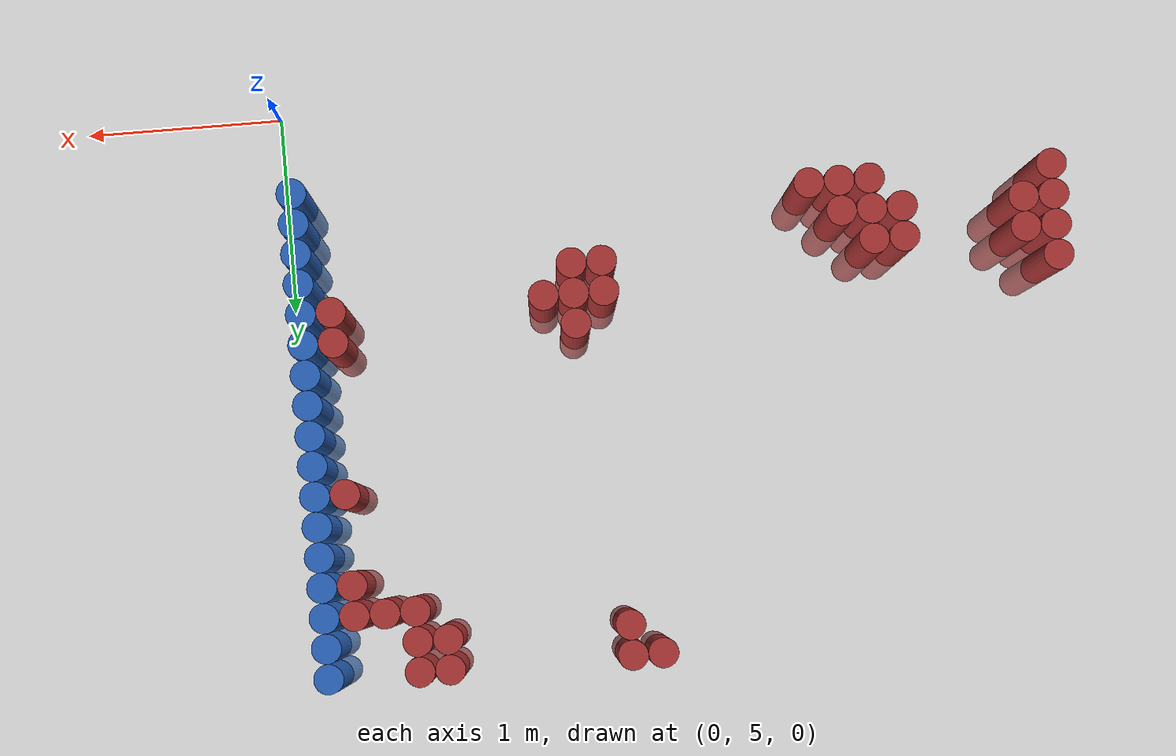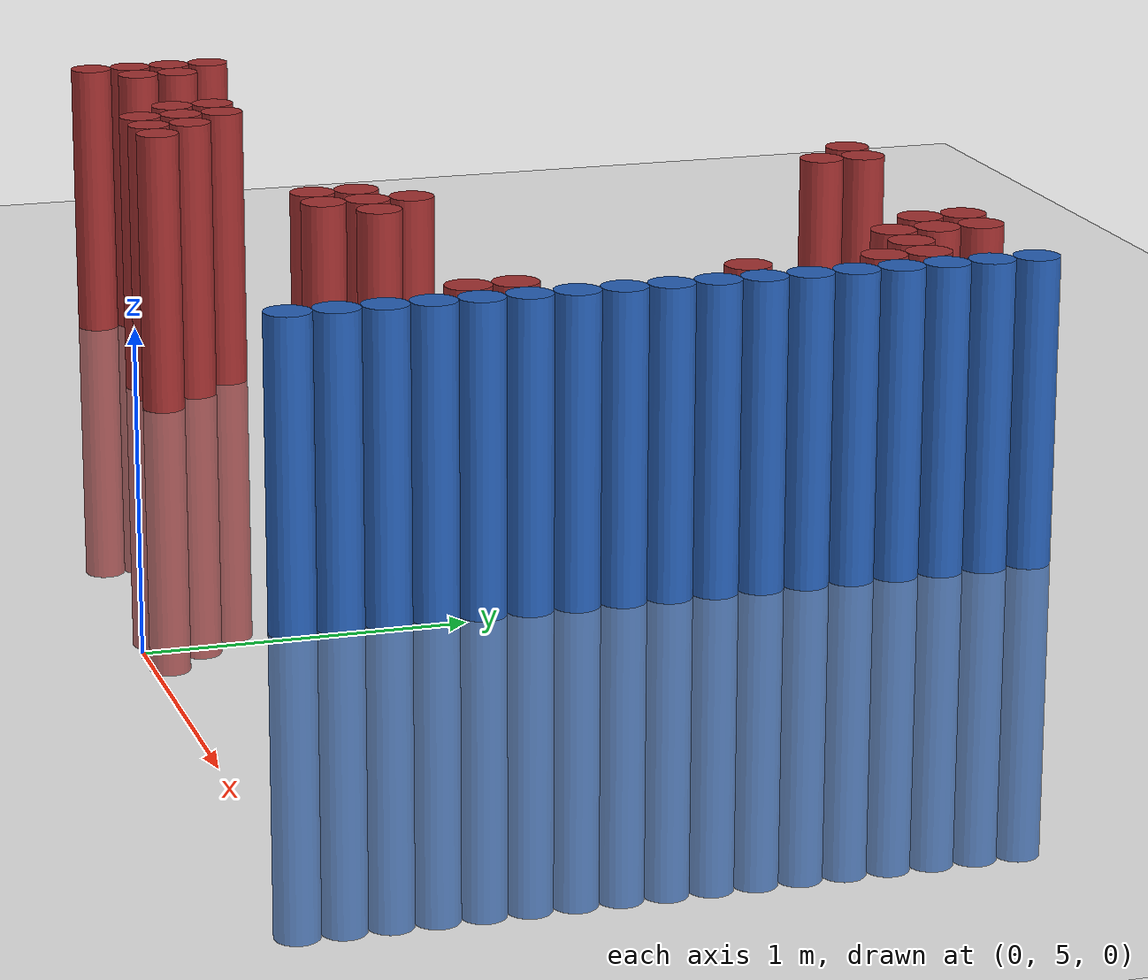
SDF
<sdf version="1.6">
 <world name="default">
  <model name="ground_plane">
   <static>1</static>
   <link name="link">
    <collision name="collision">
     <geometry><plane><normal>0 0 1</normal><size>100 100</size></plane></geometry>
     <surface><friction><ode><mu>100</mu><mu2>50</mu2></ode></friction></surface>
    </collision>
    <visual name="visual">
     <cast_shadows>0</cast_shadows>
     <geometry><plane><normal>0 0 1</normal><size>100 100</size></plane></geometry>
     <material>
      <script><uri>file://media/materials/scripts/gazebo.material</uri><name>Gazebo/Grey</name></script>
     </material>
    </visual>
   </link>
  </model>
  <model name="unit_cylinder_151">
   <static>1</static>
   <pose>-3.825000 5.625000 0.000000 0.000000 0.000000 0.000000</pose>
   <link name="link">
    <inertial>
     <mass>1</mass>
     <inertia><ixx>0.145833</ixx><ixy>0</ixy><ixz>0</ixz><iyy>0.145833</iyy><iyz>0</iyz><izz>0.125</izz></inertia>
    </inertial>
    <collision name="collision">
     <geometry><cylinder><radius>0.075000</radius><length>2</length></cylinder></geometry>
    </collision>
    <visual name="visual">
     <geometry><cylinder><radius>0.075000</radius><length>2</length></cylinder></geometry>
     <material>
      <ambient>0.648000 0.192000 0.192000 1</ambient>
      <diffuse>0.648000 0.192000 0.192000 1</diffuse>
     </material>
     <material>
      <script><name>Gazebo/Grey</name><uri>file://media/materials/scripts/gazebo.material</uri></script>
     </material>
    </visual>
   </link>
  </model>
  <model name="unit_cylinder_152">
   <static>1</static>
   <pose>-3.825000 5.775000 0.000000 0.000000 0.000000 0.000000</pose>
   <link name="link">
    <inertial>
     <mass>1</mass>
     <inertia><ixx>0.145833</ixx><ixy>0</ixy><ixz>0</ixz><iyy>0.145833</iyy><iyz>0</iyz><izz>0.125</izz></inertia>
    </inertial>
    <collision name="collision">
     <geometry><cylinder><radius>0.075000</radius><length>2</length></cylinder></geometry>
    </collision>
    <visual name="visual">
     <geometry><cylinder><radius>0.075000</radius><length>2</length></cylinder></geometry>
     <material>
      <ambient>0.648000 0.192000 0.192000 1</ambient>
      <diffuse>0.648000 0.192000 0.192000 1</diffuse>
     </material>
     <material>
      <script><name>Gazebo/Grey</name><uri>file://media/materials/scripts/gazebo.material</uri></script>
     </material>
    </visual>
   </link>
  </model>
  <model name="unit_cylinder_153">
   <static>1</static>
   <pose>-3.825000 5.925000 0.000000 0.000000 0.000000 0.000000</pose>
   <link name="link">
    <inertial>
     <mass>1</mass>
     <inertia><ixx>0.145833</ixx><ixy>0</ixy><ixz>0</ixz><iyy>0.145833</iyy><iyz>0</iyz><izz>0.125</izz></inertia>
    </inertial>
    <collision name="collision">
     <geometry><cylinder><radius>0.075000</radius><length>2</length></cylinder></geometry>
    </collision>
    <visual name="visual">
     <geometry><cylinder><radius>0.075000</radius><length>2</length></cylinder></geometry>
     <material>
      <ambient>0.648000 0.192000 0.192000 1</ambient>
      <diffuse>0.648000 0.192000 0.192000 1</diffuse>
     </material>
     <material>
      <script><name>Gazebo/Grey</name><uri>file://media/materials/scripts/gazebo.material</uri></script>
     </material>
    </visual>
   </link>
  </model>
  <model name="unit_cylinder_154">
   <static>1</static>
   <pose>-3.825000 6.075000 0.000000 0.000000 0.000000 0.000000</pose>
   <link name="link">
    <inertial>
     <mass>1</mass>
     <inertia><ixx>0.145833</ixx><ixy>0</ixy><ixz>0</ixz><iyy>0.145833</iyy><iyz>0</iyz><izz>0.125</izz></inertia>
    </inertial>
    <collision name="collision">
     <geometry><cylinder><radius>0.075000</radius><length>2</length></cylinder></geometry>
    </collision>
    <visual name="visual">
     <geometry><cylinder><radius>0.075000</radius><length>2</length></cylinder></geometry>
     <material>
      <ambient>0.648000 0.192000 0.192000 1</ambient>
      <diffuse>0.648000 0.192000 0.192000 1</diffuse>
     </material>
     <material>
      <script><name>Gazebo/Grey</name><uri>file://media/materials/scripts/gazebo.material</uri></script>
     </material>
    </visual>
   </link>
  </model>
  <model name="unit_cylinder_159">
   <static>1</static>
   <pose>-3.675000 5.775000 0.000000 0.000000 0.000000 0.000000</pose>
   <link name="link">
    <inertial>
     <mass>1</mass>
     <inertia><ixx>0.145833</ixx><ixy>0</ixy><ixz>0</ixz><iyy>0.145833</iyy><iyz>0</iyz><izz>0.125</izz></inertia>
    </inertial>
    <collision name="collision">
     <geometry><cylinder><radius>0.075000</radius><length>2</length></cylinder></geometry>
    </collision>
    <visual name="visual">
     <geometry><cylinder><radius>0.075000</radius><length>2</length></cylinder></geometry>
     <material>
      <ambient>0.648000 0.192000 0.192000 1</ambient>
      <diffuse>0.648000 0.192000 0.192000 1</diffuse>
     </material>
     <material>
      <script><name>Gazebo/Grey</name><uri>file://media/materials/scripts/gazebo.material</uri></script>
     </material>
    </visual>
   </link>
  </model>
  <model name="unit_cylinder_160">
   <static>1</static>
   <pose>-3.675000 5.925000 0.000000 0.000000 0.000000 0.000000</pose>
   <link name="link">
    <inertial>
     <mass>1</mass>
     <inertia><ixx>0.145833</ixx><ixy>0</ixy><ixz>0</ixz><iyy>0.145833</iyy><iyz>0</iyz><izz>0.125</izz></inertia>
    </inertial>
    <collision name="collision">
     <geometry><cylinder><radius>0.075000</radius><length>2</length></cylinder></geometry>
    </collision>
    <visual name="visual">
     <geometry><cylinder><radius>0.075000</radius><length>2</length></cylinder></geometry>
     <material>
      <ambient>0.648000 0.192000 0.192000 1</ambient>
      <diffuse>0.648000 0.192000 0.192000 1</diffuse>
     </material>
     <material>
      <script><name>Gazebo/Grey</name><uri>file://media/materials/scripts/gazebo.material</uri></script>
     </material>
    </visual>
   </link>
  </model>
  <model name="unit_cylinder_166">
   <static>1</static>
   <pose>-3.075000 5.775000 0.000000 0.000000 0.000000 0.000000</pose>
   <link name="link">
    <inertial>
     <mass>1</mass>
     <inertia><ixx>0.145833</ixx><ixy>0</ixy><ixz>0</ixz><iyy>0.145833</iyy><iyz>0</iyz><izz>0.125</izz></inertia>
    </inertial>
    <collision name="collision">
     <geometry><cylinder><radius>0.075000</radius><length>2</length></cylinder></geometry>
    </collision>
    <visual name="visual">
     <geometry><cylinder><radius>0.075000</radius><length>2</length></cylinder></geometry>
     <material>
      <ambient>0.648000 0.192000 0.192000 1</ambient>
      <diffuse>0.648000 0.192000 0.192000 1</diffuse>
     </material>
     <material>
      <script><name>Gazebo/Grey</name><uri>file://media/materials/scripts/gazebo.material</uri></script>
     </material>
    </visual>
   </link>
  </model>
  <model name="unit_cylinder_167">
   <static>1</static>
   <pose>-3.075000 5.925000 0.000000 0.000000 0.000000 0.000000</pose>
   <link name="link">
    <inertial>
     <mass>1</mass>
     <inertia><ixx>0.145833</ixx><ixy>0</ixy><ixz>0</ixz><iyy>0.145833</iyy><iyz>0</iyz><izz>0.125</izz></inertia>
    </inertial>
    <collision name="collision">
     <geometry><cylinder><radius>0.075000</radius><length>2</length></cylinder></geometry>
    </collision>
    <visual name="visual">
     <geometry><cylinder><radius>0.075000</radius><length>2</length></cylinder></geometry>
     <material>
      <ambient>0.648000 0.192000 0.192000 1</ambient>
      <diffuse>0.648000 0.192000 0.192000 1</diffuse>
     </material>
     <material>
      <script><name>Gazebo/Grey</name><uri>file://media/materials/scripts/gazebo.material</uri></script>
     </material>
    </visual>
   </link>
  </model>
  <model name="unit_cylinder_169">
   <static>1</static>
   <pose>-2.925000 5.625000 0.000000 0.000000 0.000000 0.000000</pose>
   <link name="link">
    <inertial>
     <mass>1</mass>
     <inertia><ixx>0.145833</ixx><ixy>0</ixy><ixz>0</ixz><iyy>0.145833</iyy><iyz>0</iyz><izz>0.125</izz></inertia>
    </inertial>
    <collision name="collision">
     <geometry><cylinder><radius>0.075000</radius><length>2</length></cylinder></geometry>
    </collision>
    <visual name="visual">
     <geometry><cylinder><radius>0.075000</radius><length>2</length></cylinder></geometry>
     <material>
      <ambient>0.648000 0.192000 0.192000 1</ambient>
      <diffuse>0.648000 0.192000 0.192000 1</diffuse>
     </material>
     <material>
      <script><name>Gazebo/Grey</name><uri>file://media/materials/scripts/gazebo.material</uri></script>
     </material>
    </visual>
   </link>
  </model>
  <model name="unit_cylinder_170">
   <static>1</static>
   <pose>-2.925000 5.775000 0.000000 0.000000 0.000000 0.000000</pose>
   <link name="link">
    <inertial>
     <mass>1</mass>
     <inertia><ixx>0.145833</ixx><ixy>0</ixy><ixz>0</ixz><iyy>0.145833</iyy><iyz>0</iyz><izz>0.125</izz></inertia>
    </inertial>
    <collision name="collision">
     <geometry><cylinder><radius>0.075000</radius><length>2</length></cylinder></geometry>
    </collision>
    <visual name="visual">
     <geometry><cylinder><radius>0.075000</radius><length>2</length></cylinder></geometry>
     <material>
      <ambient>0.648000 0.192000 0.192000 1</ambient>
      <diffuse>0.648000 0.192000 0.192000 1</diffuse>
     </material>
     <material>
      <script><name>Gazebo/Grey</name><uri>file://media/materials/scripts/gazebo.material</uri></script>
     </material>
    </visual>
   </link>
  </model>
  <model name="unit_cylinder_171">
   <static>1</static>
   <pose>-2.925000 5.925000 0.000000 0.000000 0.000000 0.000000</pose>
   <link name="link">
    <inertial>
     <mass>1</mass>
     <inertia><ixx>0.145833</ixx><ixy>0</ixy><ixz>0</ixz><iyy>0.145833</iyy><iyz>0</iyz><izz>0.125</izz></inertia>
    </inertial>
    <collision name="collision">
     <geometry><cylinder><radius>0.075000</radius><length>2</length></cylinder></geometry>
    </collision>
    <visual name="visual">
     <geometry><cylinder><radius>0.075000</radius><length>2</length></cylinder></geometry>
     <material>
      <ambient>0.648000 0.192000 0.192000 1</ambient>
      <diffuse>0.648000 0.192000 0.192000 1</diffuse>
     </material>
     <material>
      <script><name>Gazebo/Grey</name><uri>file://media/materials/scripts/gazebo.material</uri></script>
     </material>
    </visual>
   </link>
  </model>
  <model name="unit_cylinder_174">
   <static>1</static>
   <pose>-2.775000 5.625000 0.000000 0.000000 0.000000 0.000000</pose>
   <link name="link">
    <inertial>
     <mass>1</mass>
     <inertia><ixx>0.145833</ixx><ixy>0</ixy><ixz>0</ixz><iyy>0.145833</iyy><iyz>0</iyz><izz>0.125</izz></inertia>
    </inertial>
    <collision name="collision">
     <geometry><cylinder><radius>0.075000</radius><length>2</length></cylinder></geometry>
    </collision>
    <visual name="visual">
     <geometry><cylinder><radius>0.075000</radius><length>2</length></cylinder></geometry>
     <material>
      <ambient>0.648000 0.192000 0.192000 1</ambient>
      <diffuse>0.648000 0.192000 0.192000 1</diffuse>
     </material>
     <material>
      <script><name>Gazebo/Grey</name><uri>file://media/materials/scripts/gazebo.material</uri></script>
     </material>
    </visual>
   </link>
  </model>
  <model name="unit_cylinder_175">
   <static>1</static>
   <pose>-2.775000 5.775000 0.000000 0.000000 0.000000 0.000000</pose>
   <link name="link">
    <inertial>
     <mass>1</mass>
     <inertia><ixx>0.145833</ixx><ixy>0</ixy><ixz>0</ixz><iyy>0.145833</iyy><iyz>0</iyz><izz>0.125</izz></inertia>
    </inertial>
    <collision name="collision">
     <geometry><cylinder><radius>0.075000</radius><length>2</length></cylinder></geometry>
    </collision>
    <visual name="visual">
     <geometry><cylinder><radius>0.075000</radius><length>2</length></cylinder></geometry>
     <material>
      <ambient>0.648000 0.192000 0.192000 1</ambient>
      <diffuse>0.648000 0.192000 0.192000 1</diffuse>
     </material>
     <material>
      <script><name>Gazebo/Grey</name><uri>file://media/materials/scripts/gazebo.material</uri></script>
     </material>
    </visual>
   </link>
  </model>
  <model name="unit_cylinder_178">
   <static>1</static>
   <pose>-2.625000 5.625000 0.000000 0.000000 0.000000 0.000000</pose>
   <link name="link">
    <inertial>
     <mass>1</mass>
     <inertia><ixx>0.145833</ixx><ixy>0</ixy><ixz>0</ixz><iyy>0.145833</iyy><iyz>0</iyz><izz>0.125</izz></inertia>
    </inertial>
    <collision name="collision">
     <geometry><cylinder><radius>0.075000</radius><length>2</length></cylinder></geometry>
    </collision>
    <visual name="visual">
     <geometry><cylinder><radius>0.075000</radius><length>2</length></cylinder></geometry>
     <material>
      <ambient>0.648000 0.192000 0.192000 1</ambient>
      <diffuse>0.648000 0.192000 0.192000 1</diffuse>
     </material>
     <material>
      <script><name>Gazebo/Grey</name><uri>file://media/materials/scripts/gazebo.material</uri></script>
     </material>
    </visual>
   </link>
  </model>
  <model name="unit_cylinder_189">
   <static>1</static>
   <pose>-1.725000 7.875000 0.000000 0.000000 0.000000 0.000000</pose>
   <link name="link">
    <inertial>
     <mass>1</mass>
     <inertia><ixx>0.145833</ixx><ixy>0</ixy><ixz>0</ixz><iyy>0.145833</iyy><iyz>0</iyz><izz>0.125</izz></inertia>
    </inertial>
    <collision name="collision">
     <geometry><cylinder><radius>0.075000</radius><length>2</length></cylinder></geometry>
    </collision>
    <visual name="visual">
     <geometry><cylinder><radius>0.075000</radius><length>2</length></cylinder></geometry>
     <material>
      <ambient>0.648000 0.192000 0.192000 1</ambient>
      <diffuse>0.648000 0.192000 0.192000 1</diffuse>
     </material>
     <material>
      <script><name>Gazebo/Grey</name><uri>file://media/materials/scripts/gazebo.material</uri></script>
     </material>
    </visual>
   </link>
  </model>
  <model name="unit_cylinder_192">
   <static>1</static>
   <pose>-1.575000 5.925000 0.000000 0.000000 0.000000 0.000000</pose>
   <link name="link">
    <inertial>
     <mass>1</mass>
     <inertia><ixx>0.145833</ixx><ixy>0</ixy><ixz>0</ixz><iyy>0.145833</iyy><iyz>0</iyz><izz>0.125</izz></inertia>
    </inertial>
    <collision name="collision">
     <geometry><cylinder><radius>0.075000</radius><length>2</length></cylinder></geometry>
    </collision>
    <visual name="visual">
     <geometry><cylinder><radius>0.075000</radius><length>2</length></cylinder></geometry>
     <material>
      <ambient>0.648000 0.192000 0.192000 1</ambient>
      <diffuse>0.648000 0.192000 0.192000 1</diffuse>
     </material>
     <material>
      <script><name>Gazebo/Grey</name><uri>file://media/materials/scripts/gazebo.material</uri></script>
     </material>
    </visual>
   </link>
  </model>
  <model name="unit_cylinder_193">
   <static>1</static>
   <pose>-1.575000 6.075000 0.000000 0.000000 0.000000 0.000000</pose>
   <link name="link">
    <inertial>
     <mass>1</mass>
     <inertia><ixx>0.145833</ixx><ixy>0</ixy><ixz>0</ixz><iyy>0.145833</iyy><iyz>0</iyz><izz>0.125</izz></inertia>
    </inertial>
    <collision name="collision">
     <geometry><cylinder><radius>0.075000</radius><length>2</length></cylinder></geometry>
    </collision>
    <visual name="visual">
     <geometry><cylinder><radius>0.075000</radius><length>2</length></cylinder></geometry>
     <material>
      <ambient>0.648000 0.192000 0.192000 1</ambient>
      <diffuse>0.648000 0.192000 0.192000 1</diffuse>
     </material>
     <material>
      <script><name>Gazebo/Grey</name><uri>file://media/materials/scripts/gazebo.material</uri></script>
     </material>
    </visual>
   </link>
  </model>
  <model name="unit_cylinder_194">
   <static>1</static>
   <pose>-1.575000 7.725000 0.000000 0.000000 0.000000 0.000000</pose>
   <link name="link">
    <inertial>
     <mass>1</mass>
     <inertia><ixx>0.145833</ixx><ixy>0</ixy><ixz>0</ixz><iyy>0.145833</iyy><iyz>0</iyz><izz>0.125</izz></inertia>
    </inertial>
    <collision name="collision">
     <geometry><cylinder><radius>0.075000</radius><length>2</length></cylinder></geometry>
    </collision>
    <visual name="visual">
     <geometry><cylinder><radius>0.075000</radius><length>2</length></cylinder></geometry>
     <material>
      <ambient>0.648000 0.192000 0.192000 1</ambient>
      <diffuse>0.648000 0.192000 0.192000 1</diffuse>
     </material>
     <material>
      <script><name>Gazebo/Grey</name><uri>file://media/materials/scripts/gazebo.material</uri></script>
     </material>
    </visual>
   </link>
  </model>
  <model name="unit_cylinder_195">
   <static>1</static>
   <pose>-1.575000 7.875000 0.000000 0.000000 0.000000 0.000000</pose>
   <link name="link">
    <inertial>
     <mass>1</mass>
     <inertia><ixx>0.145833</ixx><ixy>0</ixy><ixz>0</ixz><iyy>0.145833</iyy><iyz>0</iyz><izz>0.125</izz></inertia>
    </inertial>
    <collision name="collision">
     <geometry><cylinder><radius>0.075000</radius><length>2</length></cylinder></geometry>
    </collision>
    <visual name="visual">
     <geometry><cylinder><radius>0.075000</radius><length>2</length></cylinder></geometry>
     <material>
      <ambient>0.648000 0.192000 0.192000 1</ambient>
      <diffuse>0.648000 0.192000 0.192000 1</diffuse>
     </material>
     <material>
      <script><name>Gazebo/Grey</name><uri>file://media/materials/scripts/gazebo.material</uri></script>
     </material>
    </visual>
   </link>
  </model>
  <model name="unit_cylinder_197">
   <static>1</static>
   <pose>-1.425000 5.925000 0.000000 0.000000 0.000000 0.000000</pose>
   <link name="link">
    <inertial>
     <mass>1</mass>
     <inertia><ixx>0.145833</ixx><ixy>0</ixy><ixz>0</ixz><iyy>0.145833</iyy><iyz>0</iyz><izz>0.125</izz></inertia>
    </inertial>
    <collision name="collision">
     <geometry><cylinder><radius>0.075000</radius><length>2</length></cylinder></geometry>
    </collision>
    <visual name="visual">
     <geometry><cylinder><radius>0.075000</radius><length>2</length></cylinder></geometry>
     <material>
      <ambient>0.648000 0.192000 0.192000 1</ambient>
      <diffuse>0.648000 0.192000 0.192000 1</diffuse>
     </material>
     <material>
      <script><name>Gazebo/Grey</name><uri>file://media/materials/scripts/gazebo.material</uri></script>
     </material>
    </visual>
   </link>
  </model>
  <model name="unit_cylinder_198">
   <static>1</static>
   <pose>-1.425000 6.075000 0.000000 0.000000 0.000000 0.000000</pose>
   <link name="link">
    <inertial>
     <mass>1</mass>
     <inertia><ixx>0.145833</ixx><ixy>0</ixy><ixz>0</ixz><iyy>0.145833</iyy><iyz>0</iyz><izz>0.125</izz></inertia>
    </inertial>
    <collision name="collision">
     <geometry><cylinder><radius>0.075000</radius><length>2</length></cylinder></geometry>
    </collision>
    <visual name="visual">
     <geometry><cylinder><radius>0.075000</radius><length>2</length></cylinder></geometry>
     <material>
      <ambient>0.648000 0.192000 0.192000 1</ambient>
      <diffuse>0.648000 0.192000 0.192000 1</diffuse>
     </material>
     <material>
      <script><name>Gazebo/Grey</name><uri>file://media/materials/scripts/gazebo.material</uri></script>
     </material>
    </visual>
   </link>
  </model>
  <model name="unit_cylinder_199">
   <static>1</static>
   <pose>-1.425000 6.225000 0.000000 0.000000 0.000000 0.000000</pose>
   <link name="link">
    <inertial>
     <mass>1</mass>
     <inertia><ixx>0.145833</ixx><ixy>0</ixy><ixz>0</ixz><iyy>0.145833</iyy><iyz>0</iyz><izz>0.125</izz></inertia>
    </inertial>
    <collision name="collision">
     <geometry><cylinder><radius>0.075000</radius><length>2</length></cylinder></geometry>
    </collision>
    <visual name="visual">
     <geometry><cylinder><radius>0.075000</radius><length>2</length></cylinder></geometry>
     <material>
      <ambient>0.648000 0.192000 0.192000 1</ambient>
      <diffuse>0.648000 0.192000 0.192000 1</diffuse>
     </material>
     <material>
      <script><name>Gazebo/Grey</name><uri>file://media/materials/scripts/gazebo.material</uri></script>
     </material>
    </visual>
   </link>
  </model>
  <model name="unit_cylinder_200">
   <static>1</static>
   <pose>-1.275000 6.075000 0.000000 0.000000 0.000000 0.000000</pose>
   <link name="link">
    <inertial>
     <mass>1</mass>
     <inertia><ixx>0.145833</ixx><ixy>0</ixy><ixz>0</ixz><iyy>0.145833</iyy><iyz>0</iyz><izz>0.125</izz></inertia>
    </inertial>
    <collision name="collision">
     <geometry><cylinder><radius>0.075000</radius><length>2</length></cylinder></geometry>
    </collision>
    <visual name="visual">
     <geometry><cylinder><radius>0.075000</radius><length>2</length></cylinder></geometry>
     <material>
      <ambient>0.648000 0.192000 0.192000 1</ambient>
      <diffuse>0.648000 0.192000 0.192000 1</diffuse>
     </material>
     <material>
      <script><name>Gazebo/Grey</name><uri>file://media/materials/scripts/gazebo.material</uri></script>
     </material>
    </visual>
   </link>
  </model>
  <model name="unit_cylinder_201">
   <static>1</static>
   <pose>-0.675000 7.725000 0.000000 0.000000 0.000000 0.000000</pose>
   <link name="link">
    <inertial>
     <mass>1</mass>
     <inertia><ixx>0.145833</ixx><ixy>0</ixy><ixz>0</ixz><iyy>0.145833</iyy><iyz>0</iyz><izz>0.125</izz></inertia>
    </inertial>
    <collision name="collision">
     <geometry><cylinder><radius>0.075000</radius><length>2</length></cylinder></geometry>
    </collision>
    <visual name="visual">
     <geometry><cylinder><radius>0.075000</radius><length>2</length></cylinder></geometry>
     <material>
      <ambient>0.648000 0.192000 0.192000 1</ambient>
      <diffuse>0.648000 0.192000 0.192000 1</diffuse>
     </material>
     <material>
      <script><name>Gazebo/Grey</name><uri>file://media/materials/scripts/gazebo.material</uri></script>
     </material>
    </visual>
   </link>
  </model>
  <model name="unit_cylinder_202">
   <static>1</static>
   <pose>-0.675000 7.875000 0.000000 0.000000 0.000000 0.000000</pose>
   <link name="link">
    <inertial>
     <mass>1</mass>
     <inertia><ixx>0.145833</ixx><ixy>0</ixy><ixz>0</ixz><iyy>0.145833</iyy><iyz>0</iyz><izz>0.125</izz></inertia>
    </inertial>
    <collision name="collision">
     <geometry><cylinder><radius>0.075000</radius><length>2</length></cylinder></geometry>
    </collision>
    <visual name="visual">
     <geometry><cylinder><radius>0.075000</radius><length>2</length></cylinder></geometry>
     <material>
      <ambient>0.648000 0.192000 0.192000 1</ambient>
      <diffuse>0.648000 0.192000 0.192000 1</diffuse>
     </material>
     <material>
      <script><name>Gazebo/Grey</name><uri>file://media/materials/scripts/gazebo.material</uri></script>
     </material>
    </visual>
   </link>
  </model>
  <model name="unit_cylinder_205">
   <static>1</static>
   <pose>-0.525000 7.575000 0.000000 0.000000 0.000000 0.000000</pose>
   <link name="link">
    <inertial>
     <mass>1</mass>
     <inertia><ixx>0.145833</ixx><ixy>0</ixy><ixz>0</ixz><iyy>0.145833</iyy><iyz>0</iyz><izz>0.125</izz></inertia>
    </inertial>
    <collision name="collision">
     <geometry><cylinder><radius>0.075000</radius><length>2</length></cylinder></geometry>
    </collision>
    <visual name="visual">
     <geometry><cylinder><radius>0.075000</radius><length>2</length></cylinder></geometry>
     <material>
      <ambient>0.648000 0.192000 0.192000 1</ambient>
      <diffuse>0.648000 0.192000 0.192000 1</diffuse>
     </material>
     <material>
      <script><name>Gazebo/Grey</name><uri>file://media/materials/scripts/gazebo.material</uri></script>
     </material>
    </visual>
   </link>
  </model>
  <model name="unit_cylinder_206">
   <static>1</static>
   <pose>-0.525000 7.725000 0.000000 0.000000 0.000000 0.000000</pose>
   <link name="link">
    <inertial>
     <mass>1</mass>
     <inertia><ixx>0.145833</ixx><ixy>0</ixy><ixz>0</ixz><iyy>0.145833</iyy><iyz>0</iyz><izz>0.125</izz></inertia>
    </inertial>
    <collision name="collision">
     <geometry><cylinder><radius>0.075000</radius><length>2</length></cylinder></geometry>
    </collision>
    <visual name="visual">
     <geometry><cylinder><radius>0.075000</radius><length>2</length></cylinder></geometry>
     <material>
      <ambient>0.648000 0.192000 0.192000 1</ambient>
      <diffuse>0.648000 0.192000 0.192000 1</diffuse>
     </material>
     <material>
      <script><name>Gazebo/Grey</name><uri>file://media/materials/scripts/gazebo.material</uri></script>
     </material>
    </visual>
   </link>
  </model>
  <model name="unit_cylinder_207">
   <static>1</static>
   <pose>-0.525000 7.875000 0.000000 0.000000 0.000000 0.000000</pose>
   <link name="link">
    <inertial>
     <mass>1</mass>
     <inertia><ixx>0.145833</ixx><ixy>0</ixy><ixz>0</ixz><iyy>0.145833</iyy><iyz>0</iyz><izz>0.125</izz></inertia>
    </inertial>
    <collision name="collision">
     <geometry><cylinder><radius>0.075000</radius><length>2</length></cylinder></geometry>
    </collision>
    <visual name="visual">
     <geometry><cylinder><radius>0.075000</radius><length>2</length></cylinder></geometry>
     <material>
      <ambient>0.648000 0.192000 0.192000 1</ambient>
      <diffuse>0.648000 0.192000 0.192000 1</diffuse>
     </material>
     <material>
      <script><name>Gazebo/Grey</name><uri>file://media/materials/scripts/gazebo.material</uri></script>
     </material>
    </visual>
   </link>
  </model>
  <model name="unit_cylinder_212">
   <static>1</static>
   <pose>-0.375000 7.575000 0.000000 0.000000 0.000000 0.000000</pose>
   <link name="link">
    <inertial>
     <mass>1</mass>
     <inertia><ixx>0.145833</ixx><ixy>0</ixy><ixz>0</ixz><iyy>0.145833</iyy><iyz>0</iyz><izz>0.125</izz></inertia>
    </inertial>
    <collision name="collision">
     <geometry><cylinder><radius>0.075000</radius><length>2</length></cylinder></geometry>
    </collision>
    <visual name="visual">
     <geometry><cylinder><radius>0.075000</radius><length>2</length></cylinder></geometry>
     <material>
      <ambient>0.648000 0.192000 0.192000 1</ambient>
      <diffuse>0.648000 0.192000 0.192000 1</diffuse>
     </material>
     <material>
      <script><name>Gazebo/Grey</name><uri>file://media/materials/scripts/gazebo.material</uri></script>
     </material>
    </visual>
   </link>
  </model>
  <model name="unit_cylinder_215">
   <static>1</static>
   <pose>-0.225000 6.075000 0.000000 0.000000 0.000000 0.000000</pose>
   <link name="link">
    <inertial>
     <mass>1</mass>
     <inertia><ixx>0.145833</ixx><ixy>0</ixy><ixz>0</ixz><iyy>0.145833</iyy><iyz>0</iyz><izz>0.125</izz></inertia>
    </inertial>
    <collision name="collision">
     <geometry><cylinder><radius>0.075000</radius><length>2</length></cylinder></geometry>
    </collision>
    <visual name="visual">
     <geometry><cylinder><radius>0.075000</radius><length>2</length></cylinder></geometry>
     <material>
      <ambient>0.648000 0.192000 0.192000 1</ambient>
      <diffuse>0.648000 0.192000 0.192000 1</diffuse>
     </material>
     <material>
      <script><name>Gazebo/Grey</name><uri>file://media/materials/scripts/gazebo.material</uri></script>
     </material>
    </visual>
   </link>
  </model>
  <model name="unit_cylinder_216">
   <static>1</static>
   <pose>-0.225000 6.225000 0.000000 0.000000 0.000000 0.000000</pose>
   <link name="link">
    <inertial>
     <mass>1</mass>
     <inertia><ixx>0.145833</ixx><ixy>0</ixy><ixz>0</ixz><iyy>0.145833</iyy><iyz>0</iyz><izz>0.125</izz></inertia>
    </inertial>
    <collision name="collision">
     <geometry><cylinder><radius>0.075000</radius><length>2</length></cylinder></geometry>
    </collision>
    <visual name="visual">
     <geometry><cylinder><radius>0.075000</radius><length>2</length></cylinder></geometry>
     <material>
      <ambient>0.648000 0.192000 0.192000 1</ambient>
      <diffuse>0.648000 0.192000 0.192000 1</diffuse>
     </material>
     <material>
      <script><name>Gazebo/Grey</name><uri>file://media/materials/scripts/gazebo.material</uri></script>
     </material>
    </visual>
   </link>
  </model>
  <model name="unit_cylinder_217">
   <static>1</static>
   <pose>-0.225000 6.975000 0.000000 0.000000 0.000000 0.000000</pose>
   <link name="link">
    <inertial>
     <mass>1</mass>
     <inertia><ixx>0.145833</ixx><ixy>0</ixy><ixz>0</ixz><iyy>0.145833</iyy><iyz>0</iyz><izz>0.125</izz></inertia>
    </inertial>
    <collision name="collision">
     <geometry><cylinder><radius>0.075000</radius><length>2</length></cylinder></geometry>
    </collision>
    <visual name="visual">
     <geometry><cylinder><radius>0.075000</radius><length>2</length></cylinder></geometry>
     <material>
      <ambient>0.648000 0.192000 0.192000 1</ambient>
      <diffuse>0.648000 0.192000 0.192000 1</diffuse>
     </material>
     <material>
      <script><name>Gazebo/Grey</name><uri>file://media/materials/scripts/gazebo.material</uri></script>
     </material>
    </visual>
   </link>
  </model>
  <model name="unit_cylinder_218">
   <static>1</static>
   <pose>-0.225000 7.425000 0.000000 0.000000 0.000000 0.000000</pose>
   <link name="link">
    <inertial>
     <mass>1</mass>
     <inertia><ixx>0.145833</ixx><ixy>0</ixy><ixz>0</ixz><iyy>0.145833</iyy><iyz>0</iyz><izz>0.125</izz></inertia>
    </inertial>
    <collision name="collision">
     <geometry><cylinder><radius>0.075000</radius><length>2</length></cylinder></geometry>
    </collision>
    <visual name="visual">
     <geometry><cylinder><radius>0.075000</radius><length>2</length></cylinder></geometry>
     <material>
      <ambient>0.648000 0.192000 0.192000 1</ambient>
      <diffuse>0.648000 0.192000 0.192000 1</diffuse>
     </material>
     <material>
      <script><name>Gazebo/Grey</name><uri>file://media/materials/scripts/gazebo.material</uri></script>
     </material>
    </visual>
   </link>
  </model>
  <model name="unit_cylinder_219">
   <static>1</static>
   <pose>-0.225000 7.575000 0.000000 0.000000 0.000000 0.000000</pose>
   <link name="link">
    <inertial>
     <mass>1</mass>
     <inertia><ixx>0.145833</ixx><ixy>0</ixy><ixz>0</ixz><iyy>0.145833</iyy><iyz>0</iyz><izz>0.125</izz></inertia>
    </inertial>
    <collision name="collision">
     <geometry><cylinder><radius>0.075000</radius><length>2</length></cylinder></geometry>
    </collision>
    <visual name="visual">
     <geometry><cylinder><radius>0.075000</radius><length>2</length></cylinder></geometry>
     <material>
      <ambient>0.648000 0.192000 0.192000 1</ambient>
      <diffuse>0.648000 0.192000 0.192000 1</diffuse>
     </material>
     <material>
      <script><name>Gazebo/Grey</name><uri>file://media/materials/scripts/gazebo.material</uri></script>
     </material>
    </visual>
   </link>
  </model>
  <model name="unit_cylinder_227">
   <static>1</static>
   <pose>-0.075000 5.475000 0.000000 0.000000 0.000000 0.000000</pose>
   <link name="link">
    <inertial>
     <mass>1</mass>
     <inertia><ixx>0.145833</ixx><ixy>0</ixy><ixz>0</ixz><iyy>0.145833</iyy><iyz>0</iyz><izz>0.125</izz></inertia>
    </inertial>
    <collision name="collision">
     <geometry><cylinder><radius>0.075000</radius><length>2</length></cylinder></geometry>
    </collision>
    <visual name="visual">
     <geometry><cylinder><radius>0.075000</radius><length>2</length></cylinder></geometry>
     <material>
      <ambient>0.152000 0.379000 0.720000 1</ambient>
      <diffuse>0.152000 0.379000 0.720000 1</diffuse>
     </material>
     <material>
      <script><name>Gazebo/Grey</name><uri>file://media/materials/scripts/gazebo.material</uri></script>
     </material>
    </visual>
   </link>
  </model>
  <model name="unit_cylinder_228">
   <static>1</static>
   <pose>-0.075000 5.625000 0.000000 0.000000 0.000000 0.000000</pose>
   <link name="link">
    <inertial>
     <mass>1</mass>
     <inertia><ixx>0.145833</ixx><ixy>0</ixy><ixz>0</ixz><iyy>0.145833</iyy><iyz>0</iyz><izz>0.125</izz></inertia>
    </inertial>
    <collision name="collision">
     <geometry><cylinder><radius>0.075000</radius><length>2</length></cylinder></geometry>
    </collision>
    <visual name="visual">
     <geometry><cylinder><radius>0.075000</radius><length>2</length></cylinder></geometry>
     <material>
      <ambient>0.152000 0.379000 0.720000 1</ambient>
      <diffuse>0.152000 0.379000 0.720000 1</diffuse>
     </material>
     <material>
      <script><name>Gazebo/Grey</name><uri>file://media/materials/scripts/gazebo.material</uri></script>
     </material>
    </visual>
   </link>
  </model>
  <model name="unit_cylinder_229">
   <static>1</static>
   <pose>-0.075000 5.775000 0.000000 0.000000 0.000000 0.000000</pose>
   <link name="link">
    <inertial>
     <mass>1</mass>
     <inertia><ixx>0.145833</ixx><ixy>0</ixy><ixz>0</ixz><iyy>0.145833</iyy><iyz>0</iyz><izz>0.125</izz></inertia>
    </inertial>
    <collision name="collision">
     <geometry><cylinder><radius>0.075000</radius><length>2</length></cylinder></geometry>
    </collision>
    <visual name="visual">
     <geometry><cylinder><radius>0.075000</radius><length>2</length></cylinder></geometry>
     <material>
      <ambient>0.152000 0.379000 0.720000 1</ambient>
      <diffuse>0.152000 0.379000 0.720000 1</diffuse>
     </material>
     <material>
      <script><name>Gazebo/Grey</name><uri>file://media/materials/scripts/gazebo.material</uri></script>
     </material>
    </visual>
   </link>
  </model>
  <model name="unit_cylinder_230">
   <static>1</static>
   <pose>-0.075000 5.925000 0.000000 0.000000 0.000000 0.000000</pose>
   <link name="link">
    <inertial>
     <mass>1</mass>
     <inertia><ixx>0.145833</ixx><ixy>0</ixy><ixz>0</ixz><iyy>0.145833</iyy><iyz>0</iyz><izz>0.125</izz></inertia>
    </inertial>
    <collision name="collision">
     <geometry><cylinder><radius>0.075000</radius><length>2</length></cylinder></geometry>
    </collision>
    <visual name="visual">
     <geometry><cylinder><radius>0.075000</radius><length>2</length></cylinder></geometry>
     <material>
      <ambient>0.152000 0.379000 0.720000 1</ambient>
      <diffuse>0.152000 0.379000 0.720000 1</diffuse>
     </material>
     <material>
      <script><name>Gazebo/Grey</name><uri>file://media/materials/scripts/gazebo.material</uri></script>
     </material>
    </visual>
   </link>
  </model>
  <model name="unit_cylinder_231">
   <static>1</static>
   <pose>-0.075000 6.075000 0.000000 0.000000 0.000000 0.000000</pose>
   <link name="link">
    <inertial>
     <mass>1</mass>
     <inertia><ixx>0.145833</ixx><ixy>0</ixy><ixz>0</ixz><iyy>0.145833</iyy><iyz>0</iyz><izz>0.125</izz></inertia>
    </inertial>
    <collision name="collision">
     <geometry><cylinder><radius>0.075000</radius><length>2</length></cylinder></geometry>
    </collision>
    <visual name="visual">
     <geometry><cylinder><radius>0.075000</radius><length>2</length></cylinder></geometry>
     <material>
      <ambient>0.152000 0.379000 0.720000 1</ambient>
      <diffuse>0.152000 0.379000 0.720000 1</diffuse>
     </material>
     <material>
      <script><name>Gazebo/Grey</name><uri>file://media/materials/scripts/gazebo.material</uri></script>
     </material>
    </visual>
   </link>
  </model>
  <model name="unit_cylinder_232">
   <static>1</static>
   <pose>-0.075000 6.225000 0.000000 0.000000 0.000000 0.000000</pose>
   <link name="link">
    <inertial>
     <mass>1</mass>
     <inertia><ixx>0.145833</ixx><ixy>0</ixy><ixz>0</ixz><iyy>0.145833</iyy><iyz>0</iyz><izz>0.125</izz></inertia>
    </inertial>
    <collision name="collision">
     <geometry><cylinder><radius>0.075000</radius><length>2</length></cylinder></geometry>
    </collision>
    <visual name="visual">
     <geometry><cylinder><radius>0.075000</radius><length>2</length></cylinder></geometry>
     <material>
      <ambient>0.152000 0.379000 0.720000 1</ambient>
      <diffuse>0.152000 0.379000 0.720000 1</diffuse>
     </material>
     <material>
      <script><name>Gazebo/Grey</name><uri>file://media/materials/scripts/gazebo.material</uri></script>
     </material>
    </visual>
   </link>
  </model>
  <model name="unit_cylinder_233">
   <static>1</static>
   <pose>-0.075000 6.375000 0.000000 0.000000 0.000000 0.000000</pose>
   <link name="link">
    <inertial>
     <mass>1</mass>
     <inertia><ixx>0.145833</ixx><ixy>0</ixy><ixz>0</ixz><iyy>0.145833</iyy><iyz>0</iyz><izz>0.125</izz></inertia>
    </inertial>
    <collision name="collision">
     <geometry><cylinder><radius>0.075000</radius><length>2</length></cylinder></geometry>
    </collision>
    <visual name="visual">
     <geometry><cylinder><radius>0.075000</radius><length>2</length></cylinder></geometry>
     <material>
      <ambient>0.152000 0.379000 0.720000 1</ambient>
      <diffuse>0.152000 0.379000 0.720000 1</diffuse>
     </material>
     <material>
      <script><name>Gazebo/Grey</name><uri>file://media/materials/scripts/gazebo.material</uri></script>
     </material>
    </visual>
   </link>
  </model>
  <model name="unit_cylinder_234">
   <static>1</static>
   <pose>-0.075000 6.525000 0.000000 0.000000 0.000000 0.000000</pose>
   <link name="link">
    <inertial>
     <mass>1</mass>
     <inertia><ixx>0.145833</ixx><ixy>0</ixy><ixz>0</ixz><iyy>0.145833</iyy><iyz>0</iyz><izz>0.125</izz></inertia>
    </inertial>
    <collision name="collision">
     <geometry><cylinder><radius>0.075000</radius><length>2</length></cylinder></geometry>
    </collision>
    <visual name="visual">
     <geometry><cylinder><radius>0.075000</radius><length>2</length></cylinder></geometry>
     <material>
      <ambient>0.152000 0.379000 0.720000 1</ambient>
      <diffuse>0.152000 0.379000 0.720000 1</diffuse>
     </material>
     <material>
      <script><name>Gazebo/Grey</name><uri>file://media/materials/scripts/gazebo.material</uri></script>
     </material>
    </visual>
   </link>
  </model>
  <model name="unit_cylinder_235">
   <static>1</static>
   <pose>-0.075000 6.675000 0.000000 0.000000 0.000000 0.000000</pose>
   <link name="link">
    <inertial>
     <mass>1</mass>
     <inertia><ixx>0.145833</ixx><ixy>0</ixy><ixz>0</ixz><iyy>0.145833</iyy><iyz>0</iyz><izz>0.125</izz></inertia>
    </inertial>
    <collision name="collision">
     <geometry><cylinder><radius>0.075000</radius><length>2</length></cylinder></geometry>
    </collision>
    <visual name="visual">
     <geometry><cylinder><radius>0.075000</radius><length>2</length></cylinder></geometry>
     <material>
      <ambient>0.152000 0.379000 0.720000 1</ambient>
      <diffuse>0.152000 0.379000 0.720000 1</diffuse>
     </material>
     <material>
      <script><name>Gazebo/Grey</name><uri>file://media/materials/scripts/gazebo.material</uri></script>
     </material>
    </visual>
   </link>
  </model>
  <model name="unit_cylinder_236">
   <static>1</static>
   <pose>-0.075000 6.825000 0.000000 0.000000 0.000000 0.000000</pose>
   <link name="link">
    <inertial>
     <mass>1</mass>
     <inertia><ixx>0.145833</ixx><ixy>0</ixy><ixz>0</ixz><iyy>0.145833</iyy><iyz>0</iyz><izz>0.125</izz></inertia>
    </inertial>
    <collision name="collision">
     <geometry><cylinder><radius>0.075000</radius><length>2</length></cylinder></geometry>
    </collision>
    <visual name="visual">
     <geometry><cylinder><radius>0.075000</radius><length>2</length></cylinder></geometry>
     <material>
      <ambient>0.152000 0.379000 0.720000 1</ambient>
      <diffuse>0.152000 0.379000 0.720000 1</diffuse>
     </material>
     <material>
      <script><name>Gazebo/Grey</name><uri>file://media/materials/scripts/gazebo.material</uri></script>
     </material>
    </visual>
   </link>
  </model>
  <model name="unit_cylinder_237">
   <static>1</static>
   <pose>-0.075000 6.975000 0.000000 0.000000 0.000000 0.000000</pose>
   <link name="link">
    <inertial>
     <mass>1</mass>
     <inertia><ixx>0.145833</ixx><ixy>0</ixy><ixz>0</ixz><iyy>0.145833</iyy><iyz>0</iyz><izz>0.125</izz></inertia>
    </inertial>
    <collision name="collision">
     <geometry><cylinder><radius>0.075000</radius><length>2</length></cylinder></geometry>
    </collision>
    <visual name="visual">
     <geometry><cylinder><radius>0.075000</radius><length>2</length></cylinder></geometry>
     <material>
      <ambient>0.152000 0.379000 0.720000 1</ambient>
      <diffuse>0.152000 0.379000 0.720000 1</diffuse>
     </material>
     <material>
      <script><name>Gazebo/Grey</name><uri>file://media/materials/scripts/gazebo.material</uri></script>
     </material>
    </visual>
   </link>
  </model>
  <model name="unit_cylinder_238">
   <static>1</static>
   <pose>-0.075000 7.125000 0.000000 0.000000 0.000000 0.000000</pose>
   <link name="link">
    <inertial>
     <mass>1</mass>
     <inertia><ixx>0.145833</ixx><ixy>0</ixy><ixz>0</ixz><iyy>0.145833</iyy><iyz>0</iyz><izz>0.125</izz></inertia>
    </inertial>
    <collision name="collision">
     <geometry><cylinder><radius>0.075000</radius><length>2</length></cylinder></geometry>
    </collision>
    <visual name="visual">
     <geometry><cylinder><radius>0.075000</radius><length>2</length></cylinder></geometry>
     <material>
      <ambient>0.152000 0.379000 0.720000 1</ambient>
      <diffuse>0.152000 0.379000 0.720000 1</diffuse>
     </material>
     <material>
      <script><name>Gazebo/Grey</name><uri>file://media/materials/scripts/gazebo.material</uri></script>
     </material>
    </visual>
   </link>
  </model>
  <model name="unit_cylinder_239">
   <static>1</static>
   <pose>-0.075000 7.275000 0.000000 0.000000 0.000000 0.000000</pose>
   <link name="link">
    <inertial>
     <mass>1</mass>
     <inertia><ixx>0.145833</ixx><ixy>0</ixy><ixz>0</ixz><iyy>0.145833</iyy><iyz>0</iyz><izz>0.125</izz></inertia>
    </inertial>
    <collision name="collision">
     <geometry><cylinder><radius>0.075000</radius><length>2</length></cylinder></geometry>
    </collision>
    <visual name="visual">
     <geometry><cylinder><radius>0.075000</radius><length>2</length></cylinder></geometry>
     <material>
      <ambient>0.152000 0.379000 0.720000 1</ambient>
      <diffuse>0.152000 0.379000 0.720000 1</diffuse>
     </material>
     <material>
      <script><name>Gazebo/Grey</name><uri>file://media/materials/scripts/gazebo.material</uri></script>
     </material>
    </visual>
   </link>
  </model>
  <model name="unit_cylinder_240">
   <static>1</static>
   <pose>-0.075000 7.425000 0.000000 0.000000 0.000000 0.000000</pose>
   <link name="link">
    <inertial>
     <mass>1</mass>
     <inertia><ixx>0.145833</ixx><ixy>0</ixy><ixz>0</ixz><iyy>0.145833</iyy><iyz>0</iyz><izz>0.125</izz></inertia>
    </inertial>
    <collision name="collision">
     <geometry><cylinder><radius>0.075000</radius><length>2</length></cylinder></geometry>
    </collision>
    <visual name="visual">
     <geometry><cylinder><radius>0.075000</radius><length>2</length></cylinder></geometry>
     <material>
      <ambient>0.152000 0.379000 0.720000 1</ambient>
      <diffuse>0.152000 0.379000 0.720000 1</diffuse>
     </material>
     <material>
      <script><name>Gazebo/Grey</name><uri>file://media/materials/scripts/gazebo.material</uri></script>
     </material>
    </visual>
   </link>
  </model>
  <model name="unit_cylinder_241">
   <static>1</static>
   <pose>-0.075000 7.575000 0.000000 0.000000 0.000000 0.000000</pose>
   <link name="link">
    <inertial>
     <mass>1</mass>
     <inertia><ixx>0.145833</ixx><ixy>0</ixy><ixz>0</ixz><iyy>0.145833</iyy><iyz>0</iyz><izz>0.125</izz></inertia>
    </inertial>
    <collision name="collision">
     <geometry><cylinder><radius>0.075000</radius><length>2</length></cylinder></geometry>
    </collision>
    <visual name="visual">
     <geometry><cylinder><radius>0.075000</radius><length>2</length></cylinder></geometry>
     <material>
      <ambient>0.152000 0.379000 0.720000 1</ambient>
      <diffuse>0.152000 0.379000 0.720000 1</diffuse>
     </material>
     <material>
      <script><name>Gazebo/Grey</name><uri>file://media/materials/scripts/gazebo.material</uri></script>
     </material>
    </visual>
   </link>
  </model>
  <model name="unit_cylinder_242">
   <static>1</static>
   <pose>-0.075000 7.725000 0.000000 0.000000 0.000000 0.000000</pose>
   <link name="link">
    <inertial>
     <mass>1</mass>
     <inertia><ixx>0.145833</ixx><ixy>0</ixy><ixz>0</ixz><iyy>0.145833</iyy><iyz>0</iyz><izz>0.125</izz></inertia>
    </inertial>
    <collision name="collision">
     <geometry><cylinder><radius>0.075000</radius><length>2</length></cylinder></geometry>
    </collision>
    <visual name="visual">
     <geometry><cylinder><radius>0.075000</radius><length>2</length></cylinder></geometry>
     <material>
      <ambient>0.152000 0.379000 0.720000 1</ambient>
      <diffuse>0.152000 0.379000 0.720000 1</diffuse>
     </material>
     <material>
      <script><name>Gazebo/Grey</name><uri>file://media/materials/scripts/gazebo.material</uri></script>
     </material>
    </visual>
   </link>
  </model>
  <model name="unit_cylinder_243">
   <static>1</static>
   <pose>-0.075000 7.875000 0.000000 0.000000 0.000000 0.000000</pose>
   <link name="link">
    <inertial>
     <mass>1</mass>
     <inertia><ixx>0.145833</ixx><ixy>0</ixy><ixz>0</ixz><iyy>0.145833</iyy><iyz>0</iyz><izz>0.125</izz></inertia>
    </inertial>
    <collision name="collision">
     <geometry><cylinder><radius>0.075000</radius><length>2</length></cylinder></geometry>
    </collision>
    <visual name="visual">
     <geometry><cylinder><radius>0.075000</radius><length>2</length></cylinder></geometry>
     <material>
      <ambient>0.152000 0.379000 0.720000 1</ambient>
      <diffuse>0.152000 0.379000 0.720000 1</diffuse>
     </material>
     <material>
      <script><name>Gazebo/Grey</name><uri>file://media/materials/scripts/gazebo.material</uri></script>
     </material>
    </visual>
   </link>
  </model>
 </world>
</sdf>
